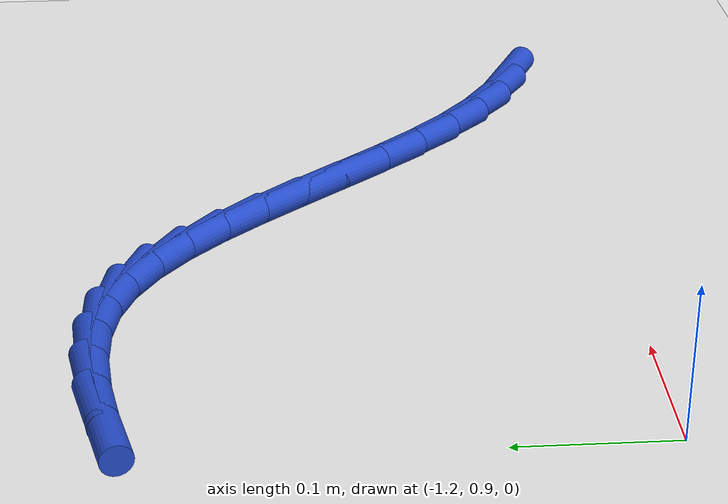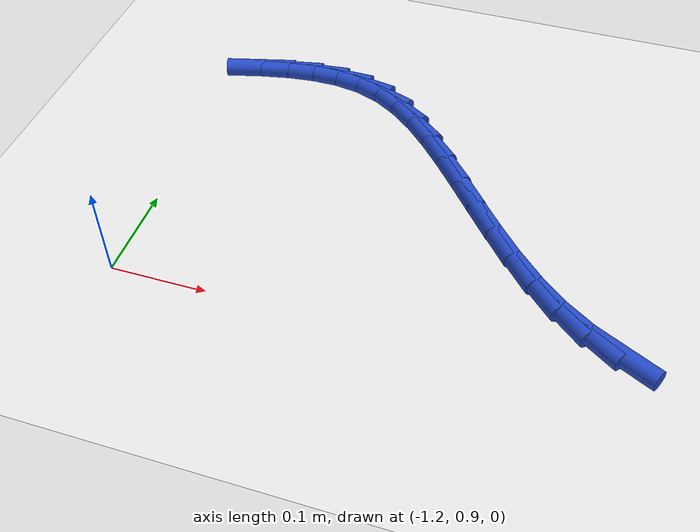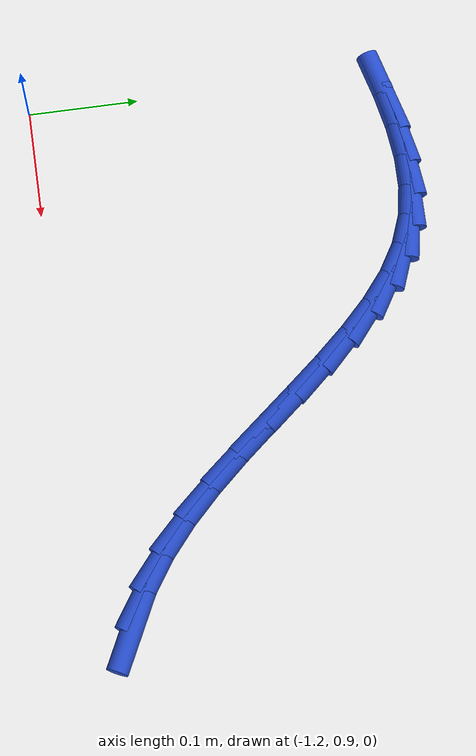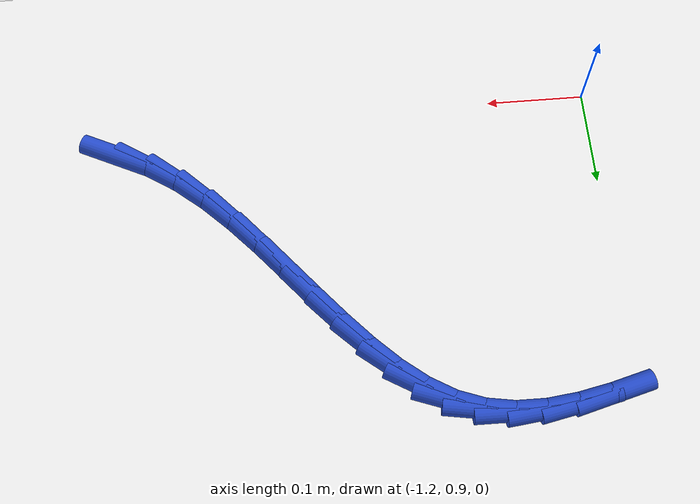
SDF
<sdf version="1.6">
 <world name="default">
  <model name="ground_plane">
   <static>1</static>
   <link name="link">
    <collision name="collision">
     <geometry><plane><normal>0 0 1</normal><size>100 100</size></plane></geometry>
     <surface><friction><ode><mu>100</mu><mu2>50</mu2></ode></friction></surface>
    </collision>
    <visual name="visual">
     <cast_shadows>0</cast_shadows>
     <geometry><plane><normal>0 0 1</normal><size>100 100</size></plane></geometry>
     <material>
      <script><uri>file://media/materials/scripts/gazebo.material</uri><name>Gazebo/WhiteGlow</name></script>
     </material>
    </visual>
   </link>
  </model>
  <model name="line">
   <link name="link_36">
    <pose>-0.7130476050269647 0.9359016160756902 0.01 0 1.57 -0.451914180970877</pose>
    <collision name="collision">
     <geometry><cylinder><radius>0.01</radius><length>0.08</length></cylinder></geometry>
    </collision>
    <visual name="visual">
     <material>
      <script><name>Gazebo/Blue</name><uri>file://media/materials/scripts/gazebo.material</uri></script>
     </material>
     <geometry><cylinder><radius>0.01</radius><length>0.08</length></cylinder></geometry>
    </visual>
   </link>
   <link name="link_37">
    <pose>-0.7445269019402381 0.9511822363728022 0.01 0 1.57 -0.5812640832778858</pose>
    <collision name="collision">
     <geometry><cylinder><radius>0.01</radius><length>0.08</length></cylinder></geometry>
    </collision>
    <visual name="visual">
     <material>
      <script><name>Gazebo/Blue</name><uri>file://media/materials/scripts/gazebo.material</uri></script>
     </material>
     <geometry><cylinder><radius>0.01</radius><length>0.08</length></cylinder></geometry>
    </visual>
   </link>
   <link name="link_38">
    <pose>-0.7741799042986441 0.9706635660153689 0.01 0 1.57 -0.6939139569976287</pose>
    <collision name="collision">
     <geometry><cylinder><radius>0.01</radius><length>0.08</length></cylinder></geometry>
    </collision>
    <visual name="visual">
     <material>
      <script><name>Gazebo/Blue</name><uri>file://media/materials/scripts/gazebo.material</uri></script>
     </material>
     <geometry><cylinder><radius>0.01</radius><length>0.08</length></cylinder></geometry>
    </visual>
   </link>
   <link name="link_39">
    <pose>-0.8021182386866487 0.9939065148836177 0.01 0 1.57 -0.7770614135203776</pose>
    <collision name="collision">
     <geometry><cylinder><radius>0.01</radius><length>0.08</length></cylinder></geometry>
    </collision>
    <visual name="visual">
     <material>
      <script><name>Gazebo/Blue</name><uri>file://media/materials/scripts/gazebo.material</uri></script>
     </material>
     <geometry><cylinder><radius>0.01</radius><length>0.08</length></cylinder></geometry>
    </visual>
   </link>
   <link name="link_40">
    <pose>-0.8286379654534977 1.0199877107555733 0.01 0 1.57 -0.8340174433594522</pose>
    <collision name="collision">
     <geometry><cylinder><radius>0.01</radius><length>0.08</length></cylinder></geometry>
    </collision>
    <visual name="visual">
     <material>
      <script><name>Gazebo/Blue</name><uri>file://media/materials/scripts/gazebo.material</uri></script>
     </material>
     <geometry><cylinder><radius>0.01</radius><length>0.08</length></cylinder></geometry>
    </visual>
   </link>
   <link name="link_41">
    <pose>-0.8540353993806037 1.047983113326898 0.01 0 1.57 -0.8676312374345876</pose>
    <collision name="collision">
     <geometry><cylinder><radius>0.01</radius><length>0.08</length></cylinder></geometry>
    </collision>
    <visual name="visual">
     <material>
      <script><name>Gazebo/Blue</name><uri>file://media/materials/scripts/gazebo.material</uri></script>
     </material>
     <geometry><cylinder><radius>0.01</radius><length>0.08</length></cylinder></geometry>
    </visual>
   </link>
   <link name="link_42">
    <pose>-0.8786068552493808 1.0769686822932543 0.01 0 1.57 -0.8794796137078563</pose>
    <collision name="collision">
     <geometry><cylinder><radius>0.01</radius><length>0.08</length></cylinder></geometry>
    </collision>
    <visual name="visual">
     <material>
      <script><name>Gazebo/Blue</name><uri>file://media/materials/scripts/gazebo.material</uri></script>
     </material>
     <geometry><cylinder><radius>0.01</radius><length>0.08</length></cylinder></geometry>
    </visual>
   </link>
   <link name="link_43">
    <pose>-0.9026486478412412 1.1060203773503043 0.01 0 1.57 -0.8695288986471125</pose>
    <collision name="collision">
     <geometry><cylinder><radius>0.01</radius><length>0.08</length></cylinder></geometry>
    </collision>
    <visual name="visual">
     <material>
      <script><name>Gazebo/Blue</name><uri>file://media/materials/scripts/gazebo.material</uri></script>
     </material>
     <geometry><cylinder><radius>0.01</radius><length>0.08</length></cylinder></geometry>
    </visual>
   </link>
   <link name="link_44">
    <pose>-0.9264570919375988 1.1342141581937109 0.01 0 1.57 -0.8358773679130423</pose>
    <collision name="collision">
     <geometry><cylinder><radius>0.01</radius><length>0.08</length></cylinder></geometry>
    </collision>
    <visual name="visual">
     <material>
      <script><name>Gazebo/Blue</name><uri>file://media/materials/scripts/gazebo.material</uri></script>
     </material>
     <geometry><cylinder><radius>0.01</radius><length>0.08</length></cylinder></geometry>
    </visual>
   </link>
   <link name="link_45">
    <pose>-0.9503285023198667 1.1606259845191358 0.01 0 1.57 -0.774449539218626</pose>
    <collision name="collision">
     <geometry><cylinder><radius>0.01</radius><length>0.08</length></cylinder></geometry>
    </collision>
    <visual name="visual">
     <material>
      <script><name>Gazebo/Blue</name><uri>file://media/materials/scripts/gazebo.material</uri></script>
     </material>
     <geometry><cylinder><radius>0.01</radius><length>0.08</length></cylinder></geometry>
    </visual>
   </link>
   <link name="link_46">
    <pose>-0.9745591937694579 1.184331816022242 0.01 0 1.57 -0.6788136685192349</pose>
    <collision name="collision">
     <geometry><cylinder><radius>0.01</radius><length>0.08</length></cylinder></geometry>
    </collision>
    <visual name="visual">
     <material>
      <script><name>Gazebo/Blue</name><uri>file://media/materials/scripts/gazebo.material</uri></script>
     </material>
     <geometry><cylinder><radius>0.01</radius><length>0.08</length></cylinder></geometry>
    </visual>
   </link>
   <link name="link_47">
    <pose>-0.9994454810677855 1.204407612398692 0.01 0 1.57 -0.540954394392659</pose>
    <collision name="collision">
     <geometry><cylinder><radius>0.01</radius><length>0.08</length></cylinder></geometry>
    </collision>
    <visual name="visual">
     <material>
      <script><name>Gazebo/Blue</name><uri>file://media/materials/scripts/gazebo.material</uri></script>
     </material>
     <geometry><cylinder><radius>0.01</radius><length>0.08</length></cylinder></geometry>
    </visual>
   </link>
   <link name="link_48">
    <pose>-1.0252836789962636 1.2199293333441479 0.01 0 1.57 -0.35797915116455686</pose>
    <collision name="collision">
     <geometry><cylinder><radius>0.01</radius><length>0.08</length></cylinder></geometry>
    </collision>
    <visual name="visual">
     <material>
      <script><name>Gazebo/Blue</name><uri>file://media/materials/scripts/gazebo.material</uri></script>
     </material>
     <geometry><cylinder><radius>0.01</radius><length>0.08</length></cylinder></geometry>
    </visual>
   </link>
   <link name="link_49">
    <pose>-1.052354672991753 1.23005652292937 0.01 0 1.57 -0.16926272702374756</pose>
    <collision name="collision">
     <geometry><cylinder><radius>0.01</radius><length>0.08</length></cylinder></geometry>
    </collision>
    <visual name="visual">
     <material>
      <script><name>Gazebo/Blue</name><uri>file://media/materials/scripts/gazebo.material</uri></script>
     </material>
     <geometry><cylinder><radius>0.01</radius><length>0.08</length></cylinder></geometry>
    </visual>
   </link>
   <link name="link_50">
    <pose>-1.0807616756549256 1.2349112206140833 0.01 0 1.57 -0.010791913638561466</pose>
    <collision name="collision">
     <geometry><cylinder><radius>0.01</radius><length>0.08</length></cylinder></geometry>
    </collision>
    <visual name="visual">
     <material>
      <script><name>Gazebo/Blue</name><uri>file://media/materials/scripts/gazebo.material</uri></script>
     </material>
     <geometry><cylinder><radius>0.01</radius><length>0.08</length></cylinder></geometry>
    </visual>
   </link>
   <link name="link_51">
    <pose>-1.1104940709025146 1.2352321025131725 0.01 0 1.57 0.11112474251257212</pose>
    <collision name="collision">
     <geometry><cylinder><radius>0.01</radius><length>0.08</length></cylinder></geometry>
    </collision>
    <visual name="visual">
     <material>
      <script><name>Gazebo/Blue</name><uri>file://media/materials/scripts/gazebo.material</uri></script>
     </material>
     <geometry><cylinder><radius>0.01</radius><length>0.08</length></cylinder></geometry>
    </visual>
   </link>
   <link name="link_52">
    <pose>-1.1415393810806551 1.2317679293056794 0.01 0 1.57 0.1983263772736202</pose>
    <collision name="collision">
     <geometry><cylinder><radius>0.01</radius><length>0.08</length></cylinder></geometry>
    </collision>
    <visual name="visual">
     <material>
      <script><name>Gazebo/Blue</name><uri>file://media/materials/scripts/gazebo.material</uri></script>
     </material>
     <geometry><cylinder><radius>0.01</radius><length>0.08</length></cylinder></geometry>
    </visual>
   </link>
   <link name="link_53">
    <pose>-1.1738851285354848 1.2252674616706463 0.01 0 1.57 0.25557182310923393</pose>
    <collision name="collision">
     <geometry><cylinder><radius>0.01</radius><length>0.08</length></cylinder></geometry>
    </collision>
    <visual name="visual">
     <material>
      <script><name>Gazebo/Blue</name><uri>file://media/materials/scripts/gazebo.material</uri></script>
     </material>
     <geometry><cylinder><radius>0.01</radius><length>0.08</length></cylinder></geometry>
    </visual>
   </link>
  </model>
 </world>
</sdf>
